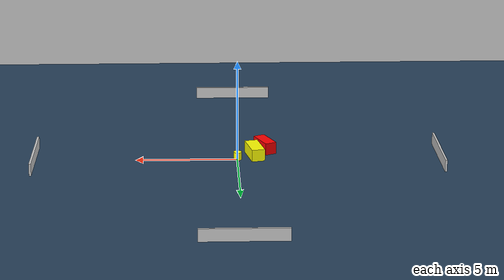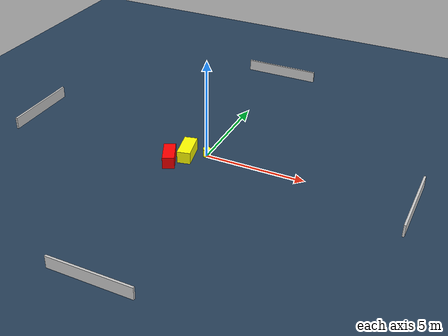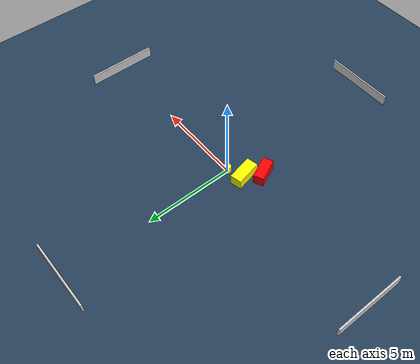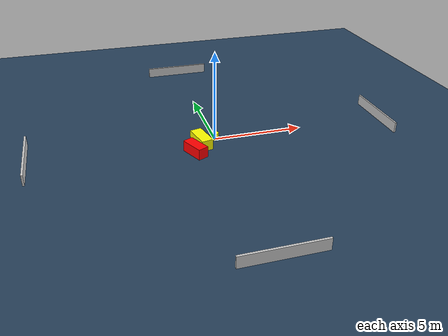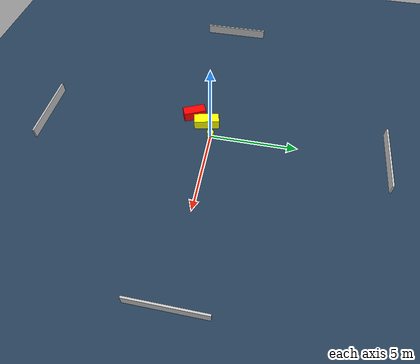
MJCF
<?xml version="1.0" ?>
<mujoco model="generated_environment">
  <option timestep="0.01" integrator="RK4" cone="elliptic"/>
  <default>
    <geom density="1"/>
  </default>
  <asset>
    <texture builtin="gradient" height="3072" name="skybox" rgb1="0.3 0.5 0.7" rgb2="0 0 0" type="skybox" width="512"/>
    <texture builtin="checker" height="300" name="groundplane" rgb1="0.2 0.3 0.4" rgb2="0.1 0.2 0.3" type="2d" width="300"/>
    <material name="groundplane" reflectance="0.2" texrepeat="5 5" texture="groundplane"/>
  </asset>
  <worldbody>
    <light dir="0 0 -1" directional="true" pos="0 0 1.5"/>
    <geom condim="3" friction="0.5 0.005 0.001" material="groundplane" name="floor" pos="0 0 0" size="0 0 0.05" type="plane"/>
    <body name="walls">
      <geom name="wall_1" condim="4" pos="-10.0 0.0 0.3" rgba="0.800000011920929 0.800000011920929 0.800000011920929 1.0" size="0.05 2.0 0.3" type="box"/>
      <geom name="wall_2" condim="4" pos="10.0 0.0 0.3" rgba="0.800000011920929 0.800000011920929 0.800000011920929 1.0" size="0.05 2.0 0.3" type="box"/>
      <geom name="wall_3" condim="4" pos="0.0 -10.0 0.3" rgba="0.800000011920929 0.800000011920929 0.800000011920929 1.0" size="2.0 0.05 0.3" type="box"/>
      <geom name="wall_4" condim="4" pos="0.0 10.0 0.3" rgba="0.800000011920929 0.800000011920929 0.800000011920929 1.0" size="2.0 0.05 0.3" type="box"/>
    </body>
    <body name="robot">
      <joint name="joint_x" type="slide" pos="0 0 0" axis="1 0 0"/>
      <joint name="joint_y" type="slide" pos="0 0 0" axis="0 1 0"/>
      <geom name="robot" type="cylinder" pos="0.0 0.0 0.2" size="0.2 0.2 0.0" mass="5.0" friction="1.0 0.005 0.0001" condim="4" rgba="1.0 1.0 0.0 1.0"/>
    </body>
    <body name="obstacle_1_movable">
      <geom name="obstacle_1_movable" condim="4" pos="-0.8608247174104512 -0.4028931688817597 0.3" euler="0 0 282.527005740292" friction="0.0 0.005 0.001" rgba="1.0 1.0 0.0 1.0" size="0.7280720444693141 0.325604781206237 0.3" type="box" mass="0.1"/>
      <joint type="free"/>
    </body>
    <body name="obstacle_2_static">
      <geom name="obstacle_2_static" condim="4" pos="-1.4026404206195737 -1.2567204936864083 0.3" euler="0 0 114.88720626592607" friction="0.0 0.005 0.001" rgba="1.0 0.0 0.0 1.0" size="0.6560424768924125 0.29115781418970355 0.3" type="box"/>
    </body>
  </worldbody>
  <actuator>
    <motor name="actuator_x" joint="joint_x" gear="1" ctrlrange="-1 1"/>
    <motor name="actuator_y" joint="joint_y" gear="1" ctrlrange="-1 1"/>
  </actuator>
</mujoco>
